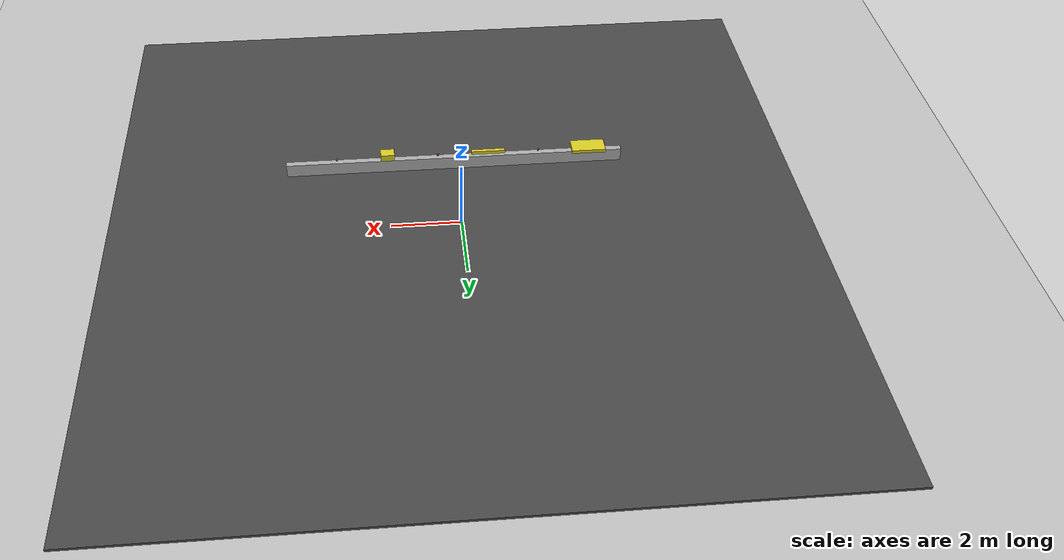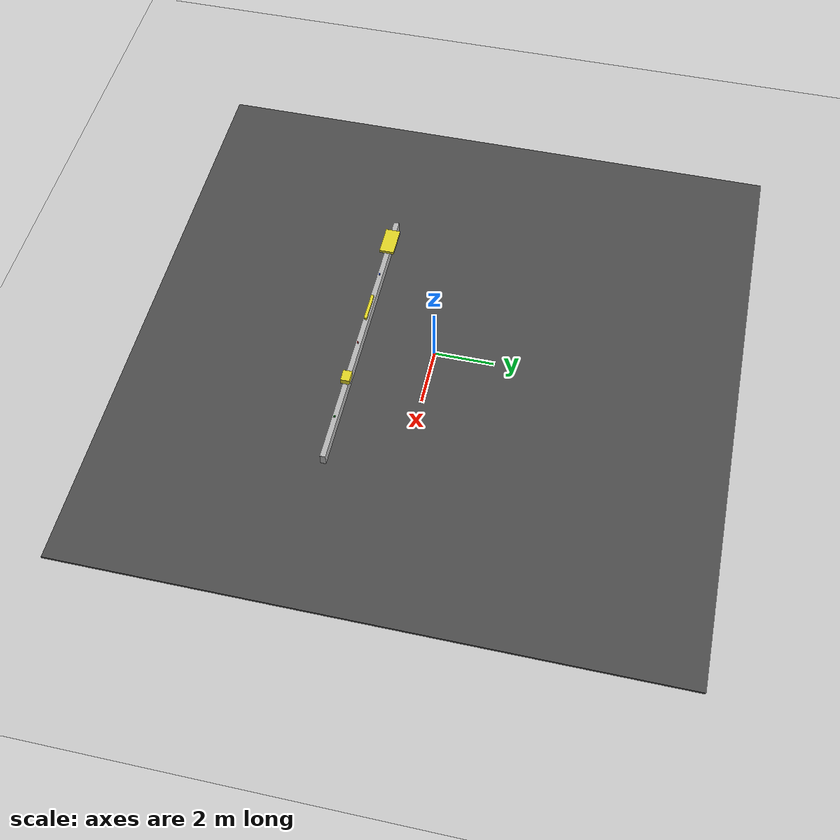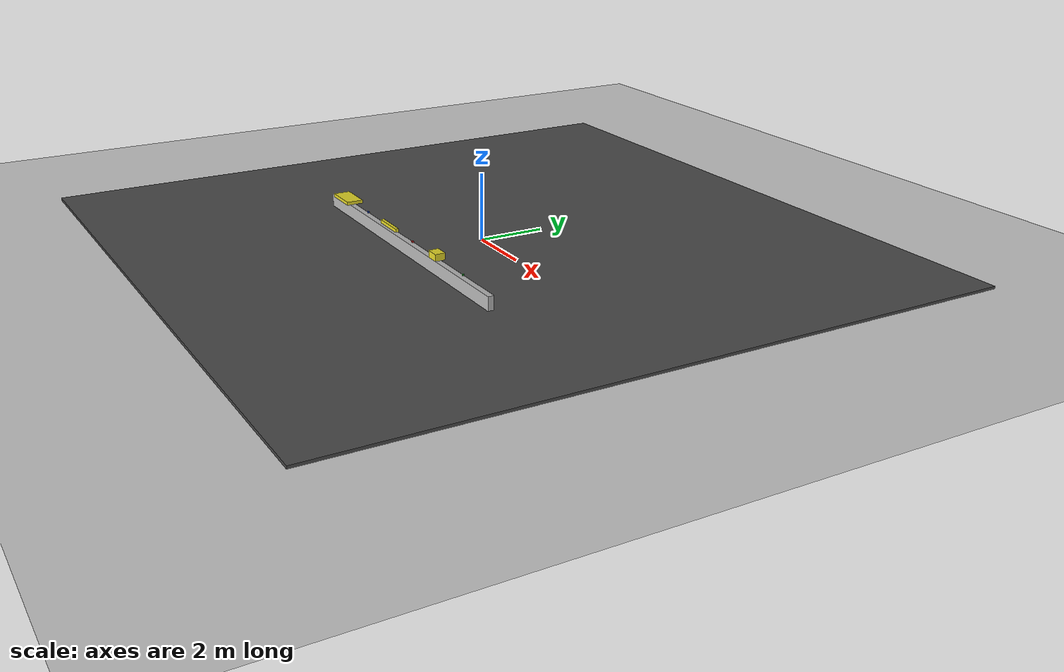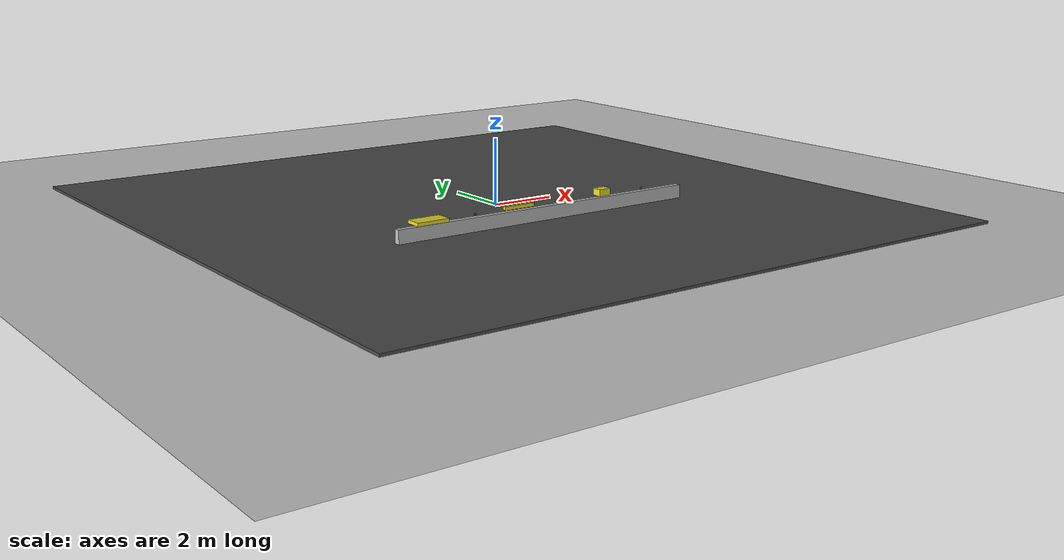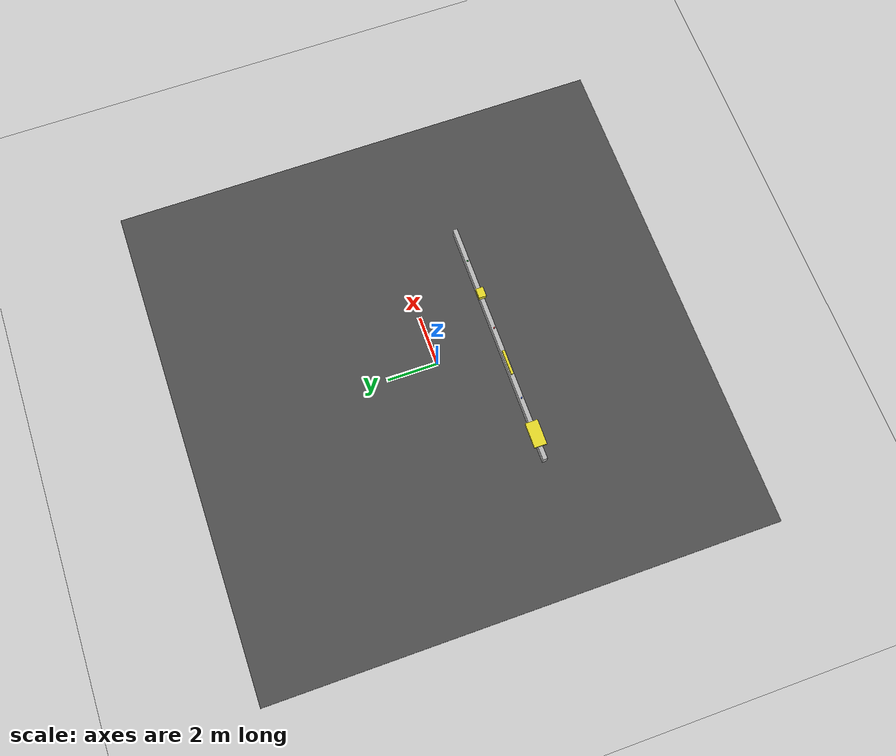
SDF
<sdf version="1.7">
 <world name="default">
  <light name="sun" type="directional">
   <pose>0 0 10 0 -0 0</pose>
   <diffuse>0.8 0.8 0.8 1</diffuse>
   <specular>0.2 0.2 0.2 1</specular>
   <attenuation>
    <range>1000</range>
    <constant>0.9</constant>
    <linear>0.01</linear>
    <quadratic>0.001</quadratic>
   </attenuation>
   <direction>-0.5 0.1 -0.9</direction>
   <spot><inner_angle>0</inner_angle><outer_angle>0</outer_angle><falloff>0</falloff></spot>
  </light>
  <plugin name="ros_link_attacher_plugin" filename="libgazebo_ros_link_attacher.so"/>
  <plugin name="ActorPosesPlugin" filename="libActorPosesPlugin.so"/>
  <model name="ground_plane">
   <static>1</static>
   <link name="link">
    <collision name="collision">
     <geometry><plane><normal>0 0 1</normal><size>100 100</size></plane></geometry>
     <surface><friction><ode><mu>100</mu><mu2>50</mu2></ode></friction></surface>
    </collision>
    <visual name="visual">
     <cast_shadows>0</cast_shadows>
     <geometry><plane><normal>0 0 1</normal><size>100 100</size></plane></geometry>
     <material>
      <script><uri>file://media/materials/scripts/gazebo.material</uri><name>Gazebo/Grey</name></script>
     </material>
    </visual>
   </link>
  </model>
  <gravity>0 0 -9.8</gravity>
  <magnetic_field>6e-06 2.3e-05 -4.2e-05</magnetic_field>
  <atmosphere type="adiabatic"/>
  <physics type="ode">
   <max_step_size>0.001</max_step_size>
   <real_time_factor>1</real_time_factor>
   <real_time_update_rate>1000</real_time_update_rate>
  </physics>
  <scene><ambient>0.4 0.4 0.4 1</ambient><background>0.7 0.7 0.7 1</background><shadows>1</shadows></scene>
  <spherical_coordinates>
   <surface_model>EARTH_WGS84</surface_model>
   <latitude_deg>0</latitude_deg>
   <longitude_deg>0</longitude_deg>
   <elevation>0</elevation>
   <heading_deg>0</heading_deg>
  </spherical_coordinates>
  <model name="asphalt_plane">
   <static>1</static>
   <link name="link">
    <collision name="collision"><geometry><box><size>20 20 0.1</size></box></geometry></collision>
    <visual name="visual">
     <cast_shadows>0</cast_shadows>
     <geometry><box><size>20 20 0.1</size></box></geometry>
     <material>
      <script>
       <uri>model://asphalt_plane/materials/scripts</uri>
       <uri>model://asphalt_plane/materials/textures</uri>
       <name>vrc/asphalt</name>
      </script>
     </material>
    </visual>
   </link>
   <pose>0.014137 0.064553 0 0 -0 0</pose>
  </model>
  <model name="conveyor_belt">
   <joint name="fixed" type="fixed">
    <pose relative_to="__model__">0 0 0 0 -0 0</pose>
    <parent>world</parent>
    <child>belt_visual</child>
   </joint>
   <link name="belt_visual">
    <pose relative_to="fixed">0 0 0 0 -0 0</pose>
    <inertial>
     <mass>20</mass>
     <inertia><ixx>1</ixx><ixy>0</ixy><ixz>0</ixz><iyy>1</iyy><iyz>0</iyz><izz>1</izz></inertia>
    </inertial>
    <collision name="belt_visual_collision"><geometry><box><size>10 0.18 0.4</size></box></geometry></collision>
    <visual name="belt_visual_visual"><geometry><box><size>10 0.18 0.4</size></box></geometry></visual>
   </link>
   <joint name="belt_joint" type="prismatic">
    <pose relative_to="belt_visual">0 0 0 0 -0 0</pose>
    <parent>belt_visual</parent>
    <child>belt_moving</child>
    <axis>
     <xyz>1 0 0</xyz>
     <limit><lower>0</lower><upper>1</upper><effort>100</effort><velocity>100</velocity></limit>
     <dynamics><spring_reference>0</spring_reference><spring_stiffness>0</spring_stiffness></dynamics>
    </axis>
   </joint>
   <link name="belt_moving">
    <pose relative_to="belt_joint">0 0 0 0 -0 0</pose>
    <inertial>
     <mass>20</mass>
     <inertia><ixx>1</ixx><ixy>0</ixy><ixz>0</ixz><iyy>1</iyy><iyz>0</iyz><izz>1</izz></inertia>
    </inertial>
    <collision name="belt_moving_collision">
     <pose>0 0 0.05 0 -0 0</pose>
     <geometry><box><size>10 0.18 0.4</size></box></geometry>
    </collision>
   </link>
   <static>0</static>
   <plugin name="belt_conveyor_plugin" filename="libROSConveyorBeltPlugin.so">
    <robot_namespace>/</robot_namespace>
    <link>belt_moving</link>
    <power>0</power>
    <max_velocity>1.0</max_velocity>
    <robotNamespace>/conveyor/</robotNamespace>
   </plugin>
   <pose>-0 -2.5 0.25 0 -0 0</pose>
  </model>
  <model name="red_cube">
   <link name="red_cube_base_link">
    <inertial>
     <mass>0.1</mass>
     <inertia>
      <ixx>4.16667e-05</ixx>
      <ixy>0</ixy>
      <ixz>0</ixz>
      <iyy>4.16667e-05</iyy>
      <iyz>0</iyz>
      <izz>4.16667e-05</izz>
     </inertia>
    </inertial>
    <collision name="red_cube_base_link_collision">
     <geometry><box><size>0.05 0.05 0.05</size></box></geometry>
    </collision>
    <visual name="red_cube_base_link_visual">
     <geometry><box><size>0.05 0.05 0.05</size></box></geometry>
     <material>
      <script><name>Gazebo/Red</name><uri>file://media/materials/scripts/gazebo.material</uri></script>
     </material>
    </visual>
   </link>
   <pose>0.500296 -2.5 0.525 0 -1e-06 -5.1e-05</pose>
  </model>
  <model name="normal_pkg">
   <link name="normal_pkg_base_link">
    <inertial>
     <mass>0.5</mass>
     <inertia><ixx>1</ixx><ixy>0</ixy><ixz>0</ixz><iyy>1</iyy><iyz>0</iyz><izz>1</izz></inertia>
    </inertial>
    <collision name="normal_pkg_base_link_collision">
     <geometry><box><size>0.4 0.3 0.2</size></box></geometry>
    </collision>
    <visual name="normal_pkg_base_link_visual">
     <geometry><box><size>0.4 0.3 0.2</size></box></geometry>
     <material>
      <script><name>Gazebo/Yellow</name><uri>file://media/materials/scripts/gazebo.material</uri></script>
     </material>
    </visual>
   </link>
   <pose>1.99999 -2.49991 0.6 0 1e-06 0.000138</pose>
  </model>
  <model name="green_cube">
   <link name="green_cube_base_link">
    <inertial>
     <mass>0.2</mass>
     <inertia>
      <ixx>4.16667e-05</ixx>
      <ixy>0</ixy>
      <ixz>0</ixz>
      <iyy>4.16667e-05</iyy>
      <iyz>0</iyz>
      <izz>4.16667e-05</izz>
     </inertia>
    </inertial>
    <collision name="green_cube_base_link_collision">
     <geometry><box><size>0.05 0.05 0.05</size></box></geometry>
    </collision>
    <visual name="green_cube_base_link_visual">
     <geometry><box><size>0.05 0.05 0.05</size></box></geometry>
     <material>
      <script><name>Gazebo/Green</name><uri>file://media/materials/scripts/gazebo.material</uri></script>
     </material>
    </visual>
   </link>
   <pose>3.5 -2.49995 0.525001 -1e-06 -1e-06 0.000215</pose>
  </model>
  <model name="long_pkg">
   <link name="long_pkg_base_link">
    <inertial>
     <mass>1</mass>
     <inertia><ixx>1</ixx><ixy>0</ixy><ixz>0</ixz><iyy>1</iyy><iyz>0</iyz><izz>1</izz></inertia>
    </inertial>
    <collision name="long_pkg_base_link_collision">
     <geometry><box><size>1 0.1 0.1</size></box></geometry>
    </collision>
    <visual name="long_pkg_base_link_visual">
     <geometry><box><size>1 0.1 0.1</size></box></geometry>
     <material>
      <script><name>Gazebo/Yellow</name><uri>file://media/materials/scripts/gazebo.material</uri></script>
     </material>
    </visual>
   </link>
   <pose>-0.999987 -2.5002 0.549998 0 -3e-06 0.000125</pose>
  </model>
  <model name="blue_cube">
   <link name="blue_cube_base_link">
    <inertial>
     <mass>0.2</mass>
     <inertia>
      <ixx>4.16667e-05</ixx>
      <ixy>0</ixy>
      <ixz>0</ixz>
      <iyy>4.16667e-05</iyy>
      <iyz>0</iyz>
      <izz>4.16667e-05</izz>
     </inertia>
    </inertial>
    <collision name="blue_cube_base_link_collision">
     <geometry><box><size>0.05 0.05 0.05</size></box></geometry>
    </collision>
    <visual name="blue_cube_base_link_visual">
     <geometry><box><size>0.05 0.05 0.05</size></box></geometry>
     <material>
      <script><name>Gazebo/Blue</name><uri>file://media/materials/scripts/gazebo.material</uri></script>
     </material>
    </visual>
   </link>
   <pose>-2.50029 -2.50004 0.524999 1e-06 -1e-06 0.004789</pose>
  </model>
  <model name="longwide_pkg">
   <link name="longwide_pkg_base_link">
    <inertial>
     <mass>0.5</mass>
     <inertia><ixx>1</ixx><ixy>0</ixy><ixz>0</ixz><iyy>1</iyy><iyz>0</iyz><izz>1</izz></inertia>
    </inertial>
    <collision name="longwide_pkg_base_link_collision">
     <geometry><box><size>1 0.5 0.1</size></box></geometry>
    </collision>
    <visual name="longwide_pkg_base_link_visual">
     <geometry><box><size>1 0.5 0.1</size></box></geometry>
     <material>
      <script><name>Gazebo/Yellow</name><uri>file://media/materials/scripts/gazebo.material</uri></script>
     </material>
    </visual>
   </link>
   <pose>-4.00001 -2.49976 0.549998 -0 1e-06 -0.000452</pose>
  </model>
 </world>
</sdf>
